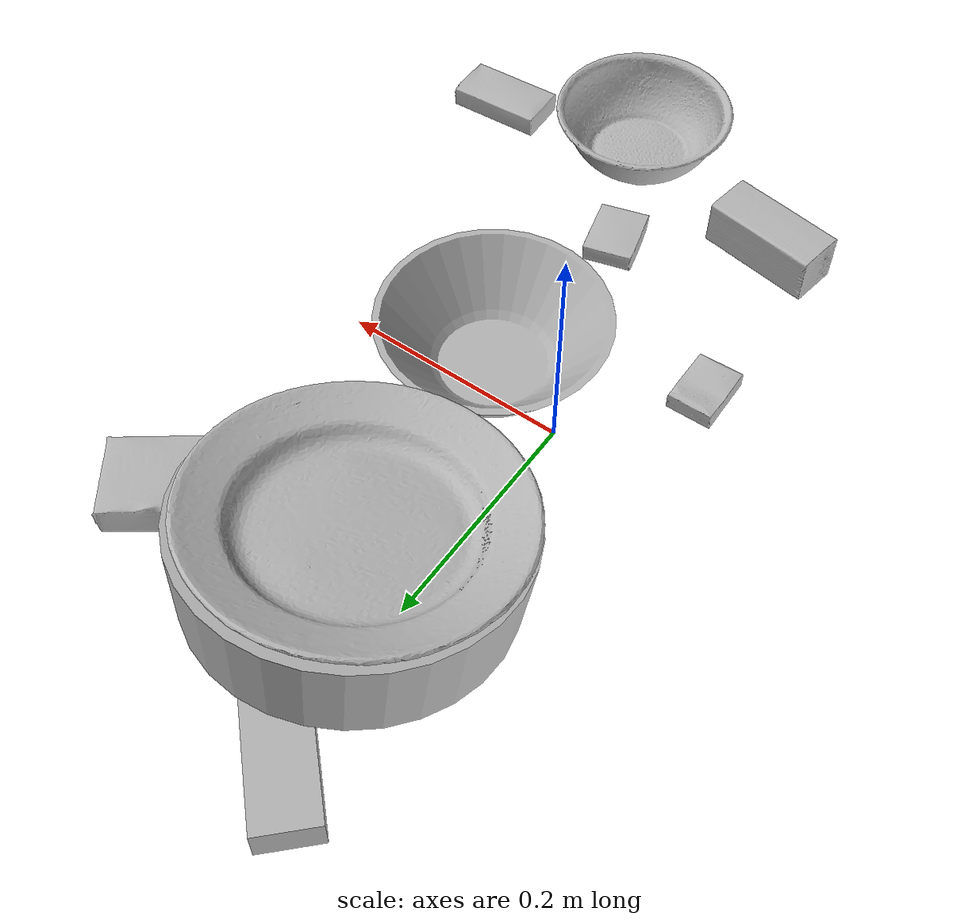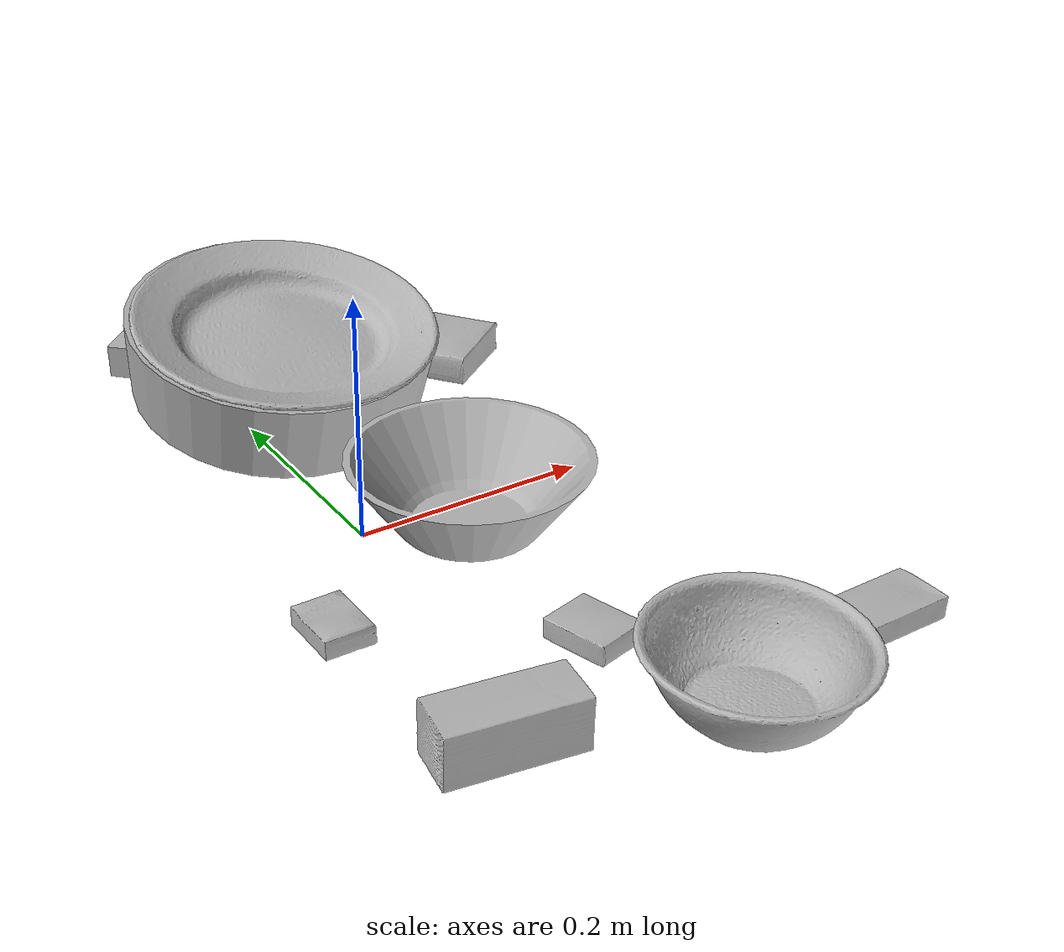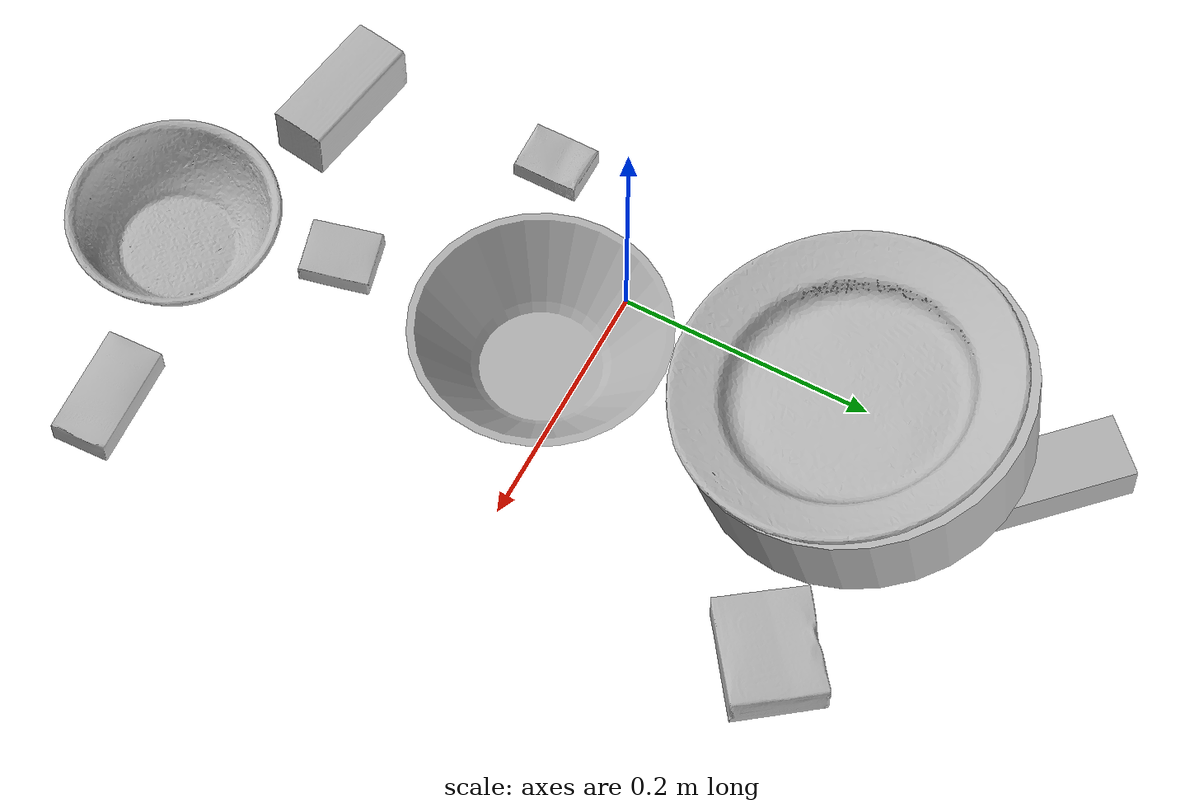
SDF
<sdf version="1.4">
  <world name="default">
    <light name="light1" type="point">
      <pose>0 0 1 0 0 0</pose>
      <diffuse>3 3 3 1</diffuse>
      <specular>3 3 3 1</specular>
    </light>
    <light name="light2" type="point">
      <pose>0 0.5 2 0 0 0</pose>
      <diffuse>1 1 1 1</diffuse>
      <specular>1 1 1 1</specular>
    </light>
    <light name="light3" type="point">
      <pose>0 0.5 2 0 0 0</pose>
      <diffuse>3 3 3 1</diffuse>
      <specular>3 3 3 1</specular>
    </light>
    <scene>
      <ambient>0.7 0.7 0.7</ambient>
    </scene>
    <model name="box1">
      <link name="link_box1">
        <collision name="default">
          <geometry>
            <mesh>
              <uri>model://jenga/collision_meshes/collision.obj</uri>
              <scale>1.0 1.0 1.0</scale>
            </mesh>
          </geometry>
          <surface>
            <friction>
              <ode>
                <mu>0.5</mu>
                <mu2>0.5</mu2>
              </ode>
            </friction>
          <contact>
        <ode>
            <max_vel>0</max_vel>
            <min_depth>0.0001</min_depth>
            <kp>1e8</kp>
        </ode>
    </contact></surface>
        </collision>
        <visual name="default">
          <geometry>
            <mesh>
              <uri>model://jenga/visual_meshes/visual.dae</uri>
              <scale>1.0 1.0 1.0</scale>
            </mesh>
          </geometry>
        </visual>
        <inertial>
          <mass>0.21843092143535614</mass>
          <pose>-2.502855807051674e-07 -0.00010250011109746993 -4.092339804628864e-05 0.0 -7.342154049184251e-07 0.0</pose>
          <inertia>
            <ixx>6.0445138e-05</ixx>
            <iyy>0.0004095746</iyy>
            <izz>0.00043725572</izz>
            <ixy>0</ixy>
            <ixz>0</ixz>
            <iyz>0</iyz>
          </inertia>
        </inertial>
      </link>
      <pose>0.005022117868065834 0.3291156589984894 0.015022680163383484 -0.0010627595209584933 -2.3992748866703786e-05 2.361233426503663</pose>
    </model>
    <model name="box11">
      <link name="link_box11">
        <collision name="default">
          <geometry>
            <mesh>
              <uri>model://pudding_box/collision_meshes/collision.obj</uri>
              <scale>0.5 0.5 0.5</scale>
            </mesh>
          </geometry>
          <surface>
            <friction>
              <ode>
                <mu>0.5</mu>
                <mu2>0.5</mu2>
              </ode>
            </friction>
          <contact>
        <ode>
            <max_vel>0</max_vel>
            <min_depth>0.0001</min_depth>
            <kp>1e8</kp>
        </ode>
    </contact></surface>
        </collision>
        <visual name="default">
          <geometry>
            <mesh>
              <uri>model://pudding_box/visual_meshes/visual.dae</uri>
              <scale>0.5 0.5 0.5</scale>
            </mesh>
          </geometry>
        </visual>
        <inertial>
          <mass>0.04130476340651512</mass>
          <pose>0.00024474109522998333 0.00040339428232982755 -0.0002594413817860186 0.005213101341234124 -0.006603795469139562 0.020079830758209564</pose>
          <inertia>
            <ixx>1.1673226e-05</ixx>
            <iyy>7.85383e-06</iyy>
            <izz>1.723857e-05</izz>
            <ixy>0</ixy>
            <ixz>0</ixz>
            <iyz>0</iyz>
          </inertia>
        </inertial>
      </link>
      <pose>0.07112294435501099 -0.20385333895683289 0.009862901642918587 0.022348598598838334 -0.011391644211164773 -2.8922787765031126</pose>
    </model>
    <model name="box2">
      <link name="link_box2">
        <collision name="default">
          <geometry>
            <mesh>
              <uri>model://gelatin_box/collision_meshes/collision.obj</uri>
              <scale>1.0 1.0 1.0</scale>
            </mesh>
          </geometry>
          <surface>
            <friction>
              <ode>
                <mu>0.5</mu>
                <mu2>0.5</mu2>
              </ode>
            </friction>
          <contact>
        <ode>
            <max_vel>0</max_vel>
            <min_depth>0.0001</min_depth>
            <kp>1e8</kp>
        </ode>
    </contact></surface>
        </collision>
        <visual name="default">
          <geometry>
            <mesh>
              <uri>model://gelatin_box/visual_meshes/visual.dae</uri>
              <scale>1.0 1.0 1.0</scale>
            </mesh>
          </geometry>
        </visual>
        <inertial>
          <mass>0.24153950810432434</mass>
          <pose>0.0004319618456065655 0.00011156871914863586 -0.0003640321083366871 -0.001050371984258798 -0.004755819621622892 0.016440559472145032</pose>
          <inertia>
            <ixx>0.00017050719</ixx>
            <iyy>0.00012179239</iyy>
            <izz>0.0002595499</izz>
            <ixy>0</ixy>
            <ixz>0</ixz>
            <iyz>0</iyz>
          </inertia>
        </inertial>
      </link>
      <pose>0.21444545686244965 0.22691179811954498 0.015168312937021255 0.005596492473723855 -0.0073034756953903315 2.193029662095656</pose>
    </model>
    <model name="box21">
      <link name="link_box21">
        <collision name="default">
          <geometry>
            <mesh>
              <uri>model://cracker_box/collision_meshes/collision.obj</uri>
              <scale>0.25 0.25 0.25</scale>
            </mesh>
          </geometry>
          <surface>
            <friction>
              <ode>
                <mu>0.5</mu>
                <mu2>0.5</mu2>
              </ode>
            </friction>
          <contact>
        <ode>
            <max_vel>0</max_vel>
            <min_depth>0.0001</min_depth>
            <kp>1e8</kp>
        </ode>
    </contact></surface>
        </collision>
        <visual name="default">
          <geometry>
            <mesh>
              <uri>model://cracker_box/visual_meshes/visual.dae</uri>
              <scale>0.25 0.25 0.25</scale>
            </mesh>
          </geometry>
        </visual>
        <inertial>
          <mass>0.04855586588382721</mass>
          <pose>0.00023660322767682374 6.358561222441494e-05 -0.00042573834070935845 -0.00031620783521113603 -0.01110649053142329 0.0025467954689779603</pose>
          <inertia>
            <ixx>7.719027e-06</ixx>
            <iyy>1.2745631e-05</iyy>
            <izz>1.8189185e-05</izz>
            <ixy>0</ixy>
            <ixz>0</ixz>
            <iyz>0</iyz>
          </inertia>
        </inertial>
      </link>
      <pose>-0.07909797877073288 -0.10189367830753326 0.009096027351915836 -0.014051045222979359 -0.005016050740819355 -1.5669904453054286</pose>
    </model>
    <model name="box3">
      <link name="link_box3">
        <collision name="default">
          <geometry>
            <mesh>
              <uri>model://wood_block/collision_meshes/collision.obj</uri>
              <scale>0.5 0.5 0.5</scale>
            </mesh>
          </geometry>
          <surface>
            <friction>
              <ode>
                <mu>0.5</mu>
                <mu2>0.5</mu2>
              </ode>
            </friction>
          <contact>
        <ode>
            <max_vel>0</max_vel>
            <min_depth>0.0001</min_depth>
            <kp>1e8</kp>
        </ode>
    </contact></surface>
        </collision>
        <visual name="default">
          <geometry>
            <mesh>
              <uri>model://wood_block/visual_meshes/visual.dae</uri>
              <scale>0.5 0.5 0.5</scale>
            </mesh>
          </geometry>
        </visual>
        <inertial>
          <mass>0.17342756688594818</mass>
          <pose>-2.906657982748584e-06 -0.000285404734313488 0.00013204291462898254 -0.052208426481931185 -0.005192696107352816 -0.006861379630616638</pose>
          <inertia>
            <ixx>5.8018082e-05</ixx>
            <iyy>0.00018327912</iyy>
            <izz>0.00018259356</izz>
            <ixy>0</ixy>
            <ixz>0</ixz>
            <iyz>0</iyz>
          </inertia>
        </inertial>
      </link>
      <pose>-0.045438654720783234 -0.2697853446006775 0.022629261016845703 -0.005208701652948667 0.0057186997574137305 2.9837185192727964</pose>
    </model>
    <model name="box31">
      <link name="link_box31">
        <collision name="default">
          <geometry>
            <mesh>
              <uri>model://sugar_box/collision_meshes/collision.obj</uri>
              <scale>0.5 0.5 0.5</scale>
            </mesh>
          </geometry>
          <surface>
            <friction>
              <ode>
                <mu>0.5</mu>
                <mu2>0.5</mu2>
              </ode>
            </friction>
          <contact>
        <ode>
            <max_vel>0</max_vel>
            <min_depth>0.0001</min_depth>
            <kp>1e8</kp>
        </ode>
    </contact></surface>
        </collision>
        <visual name="default">
          <geometry>
            <mesh>
              <uri>model://sugar_box/visual_meshes/visual.dae</uri>
              <scale>0.5 0.5 0.5</scale>
            </mesh>
          </geometry>
        </visual>
        <inertial>
          <mass>0.102778859436512</mass>
          <pose>0.0005171863595023751 1.924554817378521e-05 -0.00018182402709499002 -0.00040462592244169 0.0010506634051582892 0.0026153783234817013</pose>
          <inertia>
            <ixx>2.1408765e-05</ixx>
            <iyy>6.919753e-05</iyy>
            <izz>8.2837694e-05</izz>
            <ixy>0</ixy>
            <ixz>0</ixz>
            <iyz>0</iyz>
          </inertia>
        </inertial>
      </link>
      <pose>0.25533151626586914 -0.2956354320049286 0.011399301700294018 0.0007745052658269564 -0.023433020357900135 -3.112926583908764</pose>
    </model>
    <model name="plate1">
      <link name="link_plate1">
        <collision name="default">
          <geometry>
            <mesh>
              <uri>model://pan_tefal/collision_meshes/collision.obj</uri>
              <scale>1.0 1.0 1.0</scale>
            </mesh>
          </geometry>
          <surface>
            <friction>
              <ode>
                <mu>0.5</mu>
                <mu2>0.5</mu2>
              </ode>
            </friction>
          <contact>
        <ode>
            <max_vel>0</max_vel>
            <min_depth>0.0001</min_depth>
            <kp>1e8</kp>
        </ode>
    </contact></surface>
        </collision>
        <visual name="default">
          <geometry>
            <mesh>
              <uri>model://pan_tefal/visual_meshes/visual.dae</uri>
              <scale>1.0 1.0 1.0</scale>
            </mesh>
          </geometry>
        </visual>
        <inertial>
          <mass>1.4199398756027222</mass>
          <pose>-0.00018002341676037759 3.278919029980898e-05 -0.00851493515074253 0.0008190238651519852 -0.0003301374854212985 -0.3318555266382279</pose>
          <inertia>
            <ixx>0.009801778</ixx>
            <iyy>0.009864969</iyy>
            <izz>0.01804318</izz>
            <ixy>0</ixy>
            <ixz>0</ixz>
            <iyz>0</iyz>
          </inertia>
        </inertial>
      </link>
      <pose>0.03465515375137329 0.20749115943908691 0.058821968734264374 -0.1680882683505942 -0.08849091104537919 2.845630540357368</pose>
    </model>
    <model name="bowl1">
      <link name="link_bowl1">
        <collision name="default">
          <geometry>
            <mesh>
              <uri>model://bowl/collision_meshes/collision.obj</uri>
              <scale>1.0 1.0 1.0</scale>
            </mesh>
          </geometry>
          <surface>
            <friction>
              <ode>
                <mu>0.5</mu>
                <mu2>0.5</mu2>
              </ode>
            </friction>
          <contact>
        <ode>
            <max_vel>0</max_vel>
            <min_depth>0.0001</min_depth>
            <kp>1e8</kp>
        </ode>
    </contact></surface>
        </collision>
        <visual name="default">
          <geometry>
            <mesh>
              <uri>model://bowl/visual_meshes/visual.dae</uri>
              <scale>1.0 1.0 1.0</scale>
            </mesh>
          </geometry>
        </visual>
        <inertial>
          <mass>0.10393582284450531</mass>
          <pose>0.00020445296831894666 -0.001030207728035748 -0.0008042644476518035 -0.01576405922653839 0.014546845721322095 0.7140430703653545</pose>
          <inertia>
            <ixx>0.00023874876</ixx>
            <iyy>0.00023341418</iyy>
            <izz>0.00040165734</izz>
            <ixy>0</ixy>
            <ixz>0</ixz>
            <iyz>0</iyz>
          </inertia>
        </inertial>
      </link>
      <pose>0.11644084006547928 -0.3188203275203705 0.02778000384569168 -2.1299187997222537e-08 2.6653294281285396e-08 -1.7887072476363768</pose>
    </model>
    <model name="plate2">
      <link name="link_plate2">
        <collision name="default">
          <geometry>
            <mesh>
              <uri>model://plate/collision_meshes/collision.obj</uri>
              <scale>1.0 1.0 1.0</scale>
            </mesh>
          </geometry>
          <surface>
            <friction>
              <ode>
                <mu>0.5</mu>
                <mu2>0.5</mu2>
              </ode>
            </friction>
          <contact>
        <ode>
            <max_vel>0</max_vel>
            <min_depth>0.0001</min_depth>
            <kp>1e8</kp>
        </ode>
    </contact></surface>
        </collision>
        <visual name="default">
          <geometry>
            <mesh>
              <uri>model://plate/visual_meshes/visual.dae</uri>
              <scale>1.0 1.0 1.0</scale>
            </mesh>
          </geometry>
        </visual>
        <inertial>
          <mass>0.11643410474061966</mass>
          <pose>-0.0006044629844836891 0.000278257648460567 -0.001056199660524726 0.0022187586917557377 -0.0032254970862864826 0.45261837235677477</pose>
          <inertia>
            <ixx>0.00054468104</ixx>
            <iyy>0.0005394714</iyy>
            <izz>0.0010653147</izz>
            <ixy>0</ixy>
            <ixz>0</ixz>
            <iyz>0</iyz>
          </inertia>
        </inertial>
      </link>
      <pose>0.036755453795194626 0.19663217663764954 0.08866102248430252 0.01682837067960815 -0.17786107846298257 1.6513232972096907</pose>
    </model>
    <model name="bowl2">
      <link name="link_bowl2">
        <collision name="default">
          <geometry>
            <mesh>
              <uri>model://bowl_a/collision_meshes/collision.obj</uri>
              <scale>1.0 1.0 1.0</scale>
            </mesh>
          </geometry>
          <surface>
            <friction>
              <ode>
                <mu>0.5</mu>
                <mu2>0.5</mu2>
              </ode>
            </friction>
          <contact>
        <ode>
            <max_vel>0</max_vel>
            <min_depth>0.0001</min_depth>
            <kp>1e8</kp>
        </ode>
    </contact></surface>
        </collision>
        <visual name="default">
          <geometry>
            <mesh>
              <uri>model://bowl_a/visual_meshes/visual.dae</uri>
              <scale>1.0 1.0 1.0</scale>
            </mesh>
          </geometry>
        </visual>
        <inertial>
          <mass>0.4875580668449402</mass>
          <pose>0.00027867365861311555 4.73092841275502e-05 -0.0013765289913862944 -0.0009805446644095745 -0.0010938154105800495 -0.1912289991244328</pose>
          <inertia>
            <ixx>0.0013881001</ixx>
            <iyy>0.0013966226</iyy>
            <izz>0.0024687892</izz>
            <ixy>0</ixy>
            <ixz>0</ixz>
            <iyz>0</iyz>
          </inertia>
        </inertial>
      </link>
      <pose>0.08011884242296219 -0.02884271927177906 0.03038305789232254 -1.607603393010567e-06 1.3465780156891614e-07 -1.8880857085360088</pose>
    </model>
  <physics type="ode">
      <max_contacts>50</max_contacts>
      <ode>
        <solver>
          <type>quick</type>
          <iters>75</iters>
        </solver>
        <constraints>
          <contact_max_correcting_vel>0</contact_max_correcting_vel>
          <contact_surface_layer>0</contact_surface_layer>
        </constraints>
      </ode>
    </physics></world>
</sdf>
